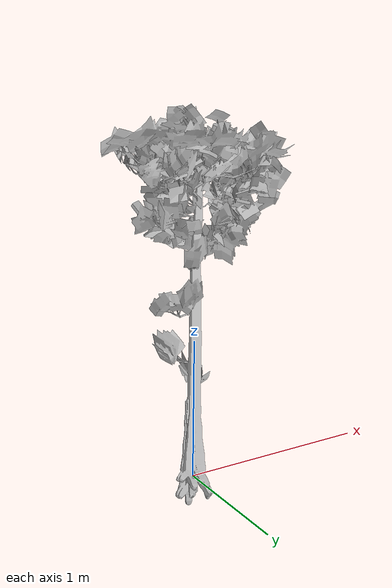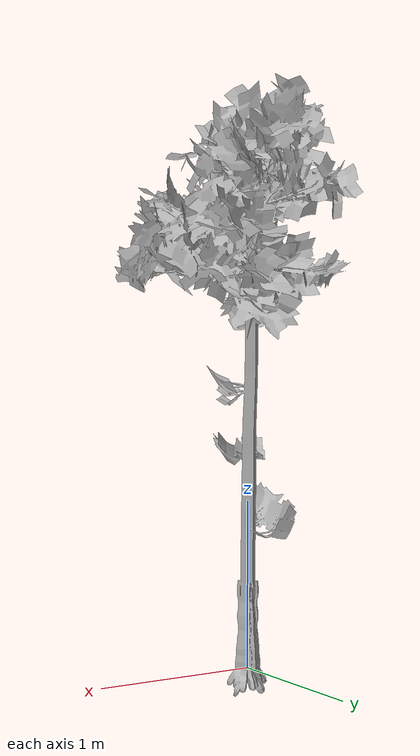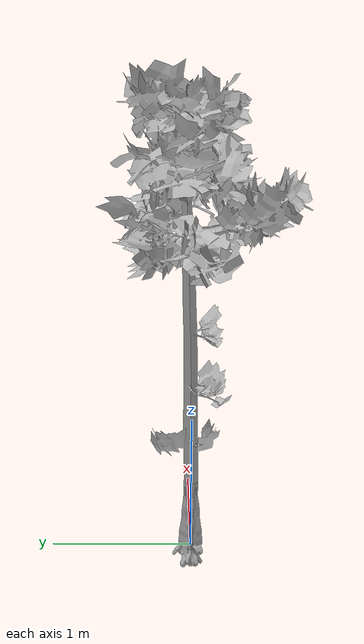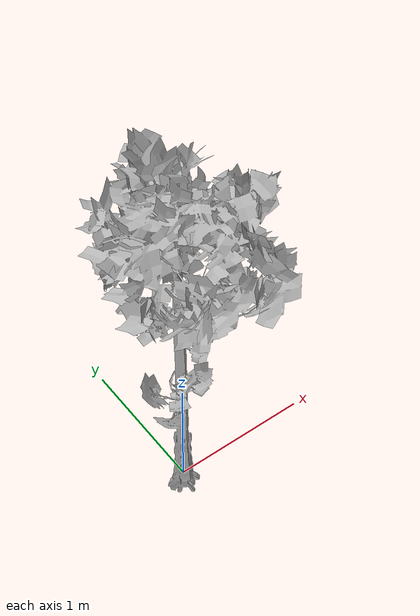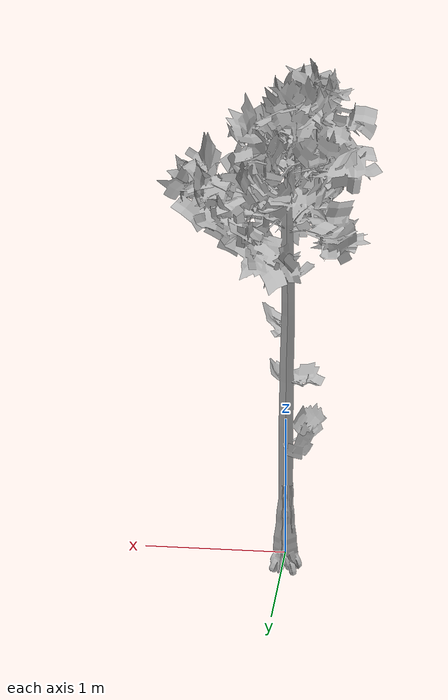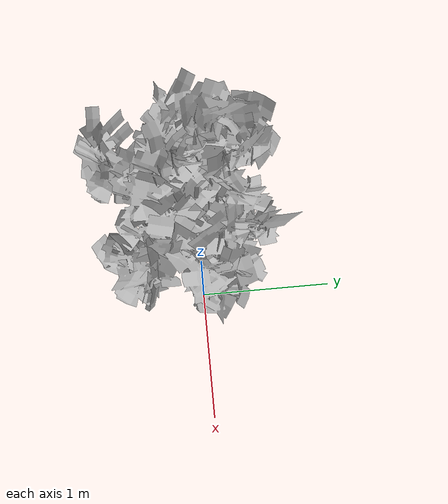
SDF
<?xml version="1.0" ?>
<sdf version="1.5">
  <model name="Tree 9">
     <static>true</static>
    <pose frame=''>0 0 0 1.57079 0 0</pose>
    <link name="link">
      <pose frame=''>0 0 0 0 0 0</pose>
      <collision name="collision">
        <geometry>
          <mesh>
            <scale>1 1 1</scale>
            <uri>model://tree_9/meshes/tree_9.obj</uri>
          </mesh>
        </geometry>
      </collision>
      <visual name="visual">
        <geometry>
          <mesh>

            <scale>1 1 1</scale>
            <uri>model://tree_9/meshes/tree_9.obj</uri>
          </mesh>
        </geometry>
      </visual>
    </link>
  </model>
</sdf>
